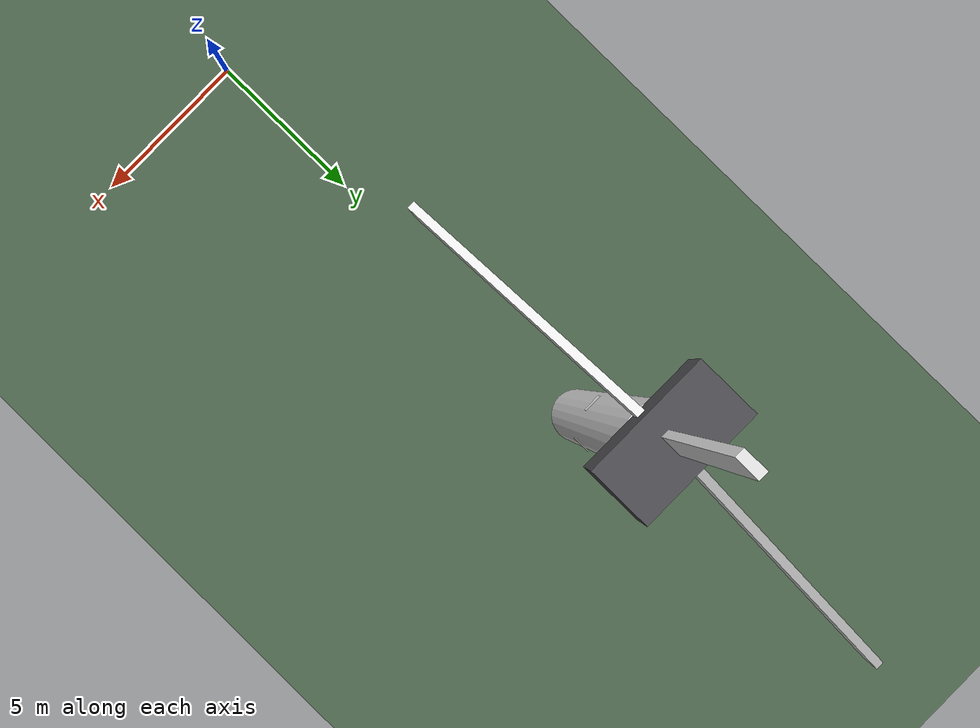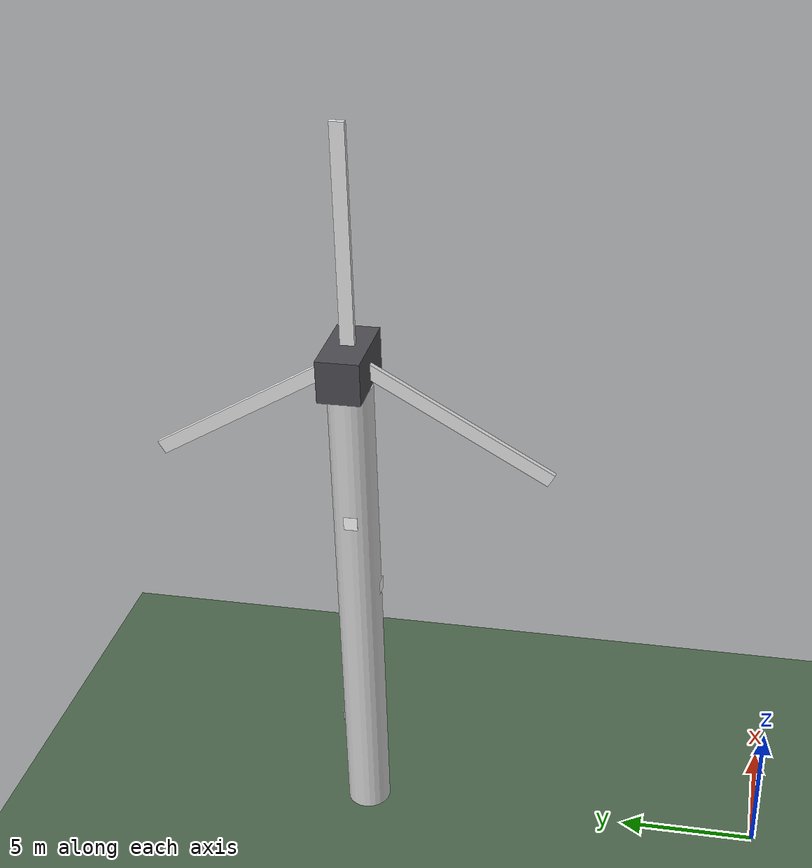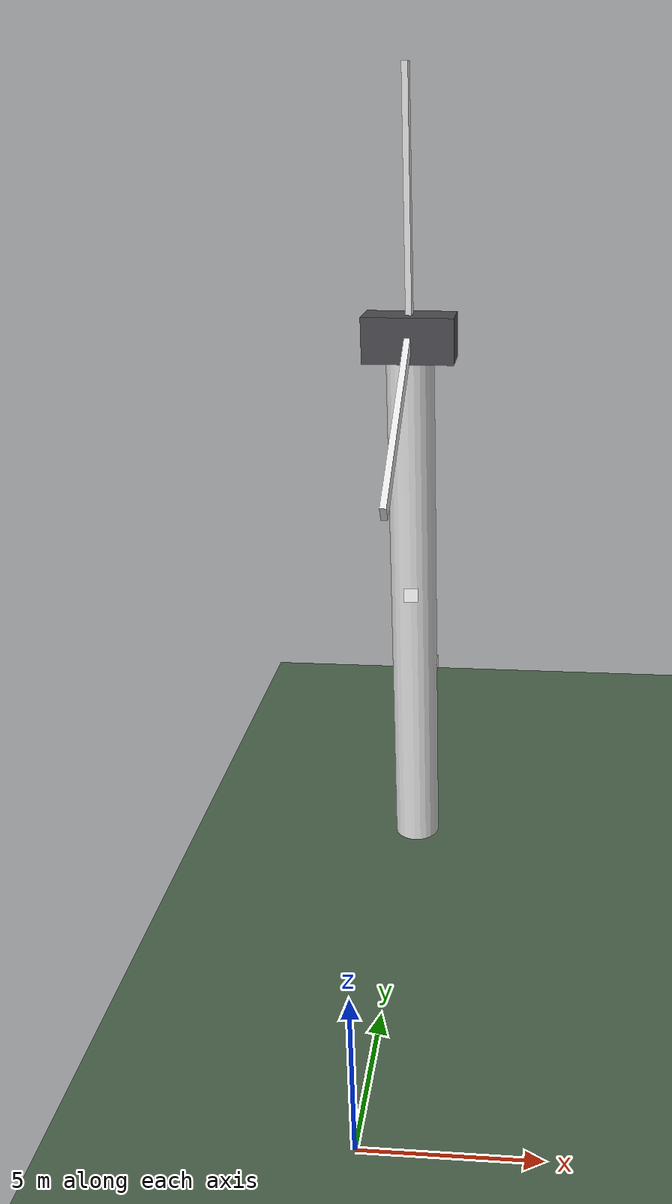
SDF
<sdf version="1.9">
 <world name="turbine_world">
  <physics name="1ms" type="ignore">
   <max_step_size>0.001</max_step_size>
   <real_time_factor>1.0</real_time_factor>
  </physics>
  <plugin filename="gz-sim-physics-system" name="gz::sim::systems::Physics"/>
  <plugin filename="gz-sim-sensors-system" name="gz::sim::systems::Sensors">
   <render_engine>ogre2</render_engine>
  </plugin>
  <plugin filename="gz-sim-user-commands-system" name="gz::sim::systems::UserCommands"/>
  <plugin filename="gz-sim-scene-broadcaster-system" name="gz::sim::systems::SceneBroadcaster"/>
  <plugin filename="gz-sim-imu-system" name="gz::sim::systems::Imu"/>
  <plugin filename="gz-sim-navsat-system" name="gz::sim::systems::NavSat"/>
  <scene><ambient>1.0 1.0 1.0</ambient><background>0.8 0.8 0.9</background></scene>
  <spherical_coordinates>
   <latitude_deg>-35.363262</latitude_deg>
   <longitude_deg>149.165237</longitude_deg>
   <elevation>584</elevation>
   <heading_deg>0</heading_deg>
   <surface_model>EARTH_WGS84</surface_model>
  </spherical_coordinates>
  <light type="directional" name="sun">
   <pose>0 0 10 0 0 0</pose>
   <diffuse>0.8 0.8 0.8 1</diffuse>
   <specular>0.8 0.8 0.8 1</specular>
   <attenuation>
    <range>1000</range>
    <constant>0.9</constant>
    <linear>0.01</linear>
    <quadratic>0.001</quadratic>
   </attenuation>
   <direction>-0.5 0.1 -0.9</direction>
  </light>
  <model name="ground_plane">
   <static>true</static>
   <link name="link">
    <collision name="collision">
     <geometry><plane><normal>0 0 1</normal><size>200 200</size></plane></geometry>
    </collision>
    <visual name="visual">
     <geometry><plane><normal>0 0 1</normal><size>200 200</size></plane></geometry>
     <material><ambient>0.3 0.4 0.3 1</ambient><diffuse>0.3 0.4 0.3 1</diffuse></material>
    </visual>
   </link>
  </model>
  <model name="turbine">
   <static>true</static>
   <pose>0 15 0 0 0 0</pose>
   <link name="frame">
    <collision name="tower_col">
     <pose>0 0 9 0 0 0</pose>
     <geometry><cylinder><radius>0.8</radius><length>18</length></cylinder></geometry>
    </collision>
    <visual name="tower_vis">
     <pose>0 0 9 0 0 0</pose>
     <geometry><cylinder><radius>0.8</radius><length>18</length></cylinder></geometry>
     <material><ambient>0.85 0.85 0.85 1</ambient><diffuse>0.85 0.85 0.85 1</diffuse></material>
    </visual>
    <collision name="nacelle_col">
     <pose>0 0 18.75 0 0 0</pose>
     <geometry><box><size>3.0 1.5 1.5</size></box></geometry>
    </collision>
    <visual name="nacelle_vis">
     <pose>0 0 18.75 0 0 0</pose>
     <geometry><box><size>3.0 1.5 1.5</size></box></geometry>
     <material><ambient>0.3 0.3 0.32 1</ambient><diffuse>0.3 0.3 0.32 1</diffuse></material>
    </visual>
    <collision name="blade_up_col">
     <pose>0 0 23 0 0 0</pose>
     <geometry><box><size>0.2 0.5 8</size></box></geometry>
    </collision>
    <visual name="blade_up_vis">
     <pose>0 0 23 0 0 0</pose>
     <geometry><box><size>0.2 0.5 8</size></box></geometry>
     <material><ambient>0.9 0.9 0.9 1</ambient><diffuse>0.9 0.9 0.9 1</diffuse></material>
    </visual>
    <collision name="blade_left_col">
     <pose>0 -3.464 17 2.0944 0 0</pose>
     <geometry><box><size>0.2 0.5 8</size></box></geometry>
    </collision>
    <visual name="blade_left_vis">
     <pose>0 -3.464 17 2.0944 0 0</pose>
     <geometry><box><size>0.2 0.5 8</size></box></geometry>
     <material><ambient>0.9 0.9 0.9 1</ambient><diffuse>0.9 0.9 0.9 1</diffuse></material>
    </visual>
    <collision name="blade_right_col">
     <pose>0 3.464 17 -2.0944 0 0</pose>
     <geometry><box><size>0.2 0.5 8</size></box></geometry>
    </collision>
    <visual name="blade_right_vis">
     <pose>0 3.464 17 -2.0944 0 0</pose>
     <geometry><box><size>0.2 0.5 8</size></box></geometry>
     <material><ambient>0.9 0.9 0.9 1</ambient><diffuse>0.9 0.9 0.9 1</diffuse></material>
    </visual>
   </link>
  </model>
  <include><uri>model://defect_marker_turbine</uri><pose>0 15 0 0 0 0</pose></include>
 </world>
</sdf>

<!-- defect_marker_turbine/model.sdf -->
<sdf version="1.9">
  <model name="defect_marker_turbine">
    <static>true</static>

    <!-- North face marker, box rotated so its flat face points north -->
    <link name="marker_0">
      <pose>0.0 0.81 4.0 -1.5708 0 0</pose>
      <visual name="marker_0_visual">
        <geometry>
          <box><size>0.5 0.5 0.01</size></box>
        </geometry>
        <material>
          <ambient>1 1 1 1</ambient>
          <diffuse>1 1 1 1</diffuse>
          <pbr>
            <metal>
              <albedo_map>model://defect_marker/marker_0.png</albedo_map>
            </metal>
          </pbr>
        </material>
      </visual>
    </link>

    <!-- East face marker, box rotated so its flat face points east -->
    <link name="marker_1">
      <pose>0.81 0.0 7.0 0 1.5708 0</pose>
      <visual name="marker_1_visual">
        <geometry>
          <box><size>0.5 0.5 0.01</size></box>
        </geometry>
        <material>
          <ambient>1 1 1 1</ambient>
          <diffuse>1 1 1 1</diffuse>
          <pbr>
            <metal>
              <albedo_map>model://defect_marker/marker_1.png</albedo_map>
            </metal>
          </pbr>
        </material>
      </visual>
    </link>

    <!-- South face marker, box rotated so its flat face points south -->
    <link name="marker_2">
      <pose>0.0 -0.81 10.0 1.5708 0 0</pose>
      <visual name="marker_2_visual">
        <geometry>
          <box><size>0.5 0.5 0.01</size></box>
        </geometry>
        <material>
          <ambient>1 1 1 1</ambient>
          <diffuse>1 1 1 1</diffuse>
          <pbr>
            <metal>
              <albedo_map>model://defect_marker/marker_2.png</albedo_map>
            </metal>
          </pbr>
        </material>
      </visual>
    </link>

    <!-- West face marker, box rotated so its flat face points west -->
    <link name="marker_3">
      <pose>-0.81 0.0 13.0 0 -1.5708 0</pose>
      <visual name="marker_3_visual">
        <geometry>
          <box><size>0.5 0.5 0.01</size></box>
        </geometry>
        <material>
          <ambient>1 1 1 1</ambient>
          <diffuse>1 1 1 1</diffuse>
          <pbr>
            <metal>
              <albedo_map>model://defect_marker/marker_3.png</albedo_map>
            </metal>
          </pbr>
        </material>
      </visual>
    </link>
  </model>
</sdf>
